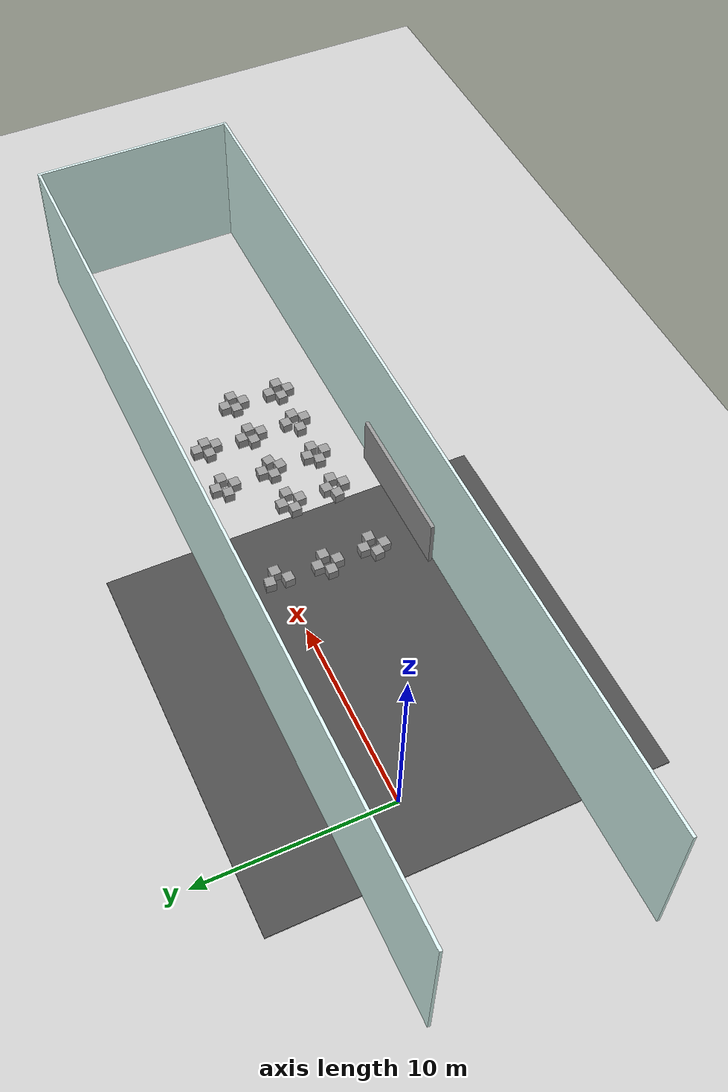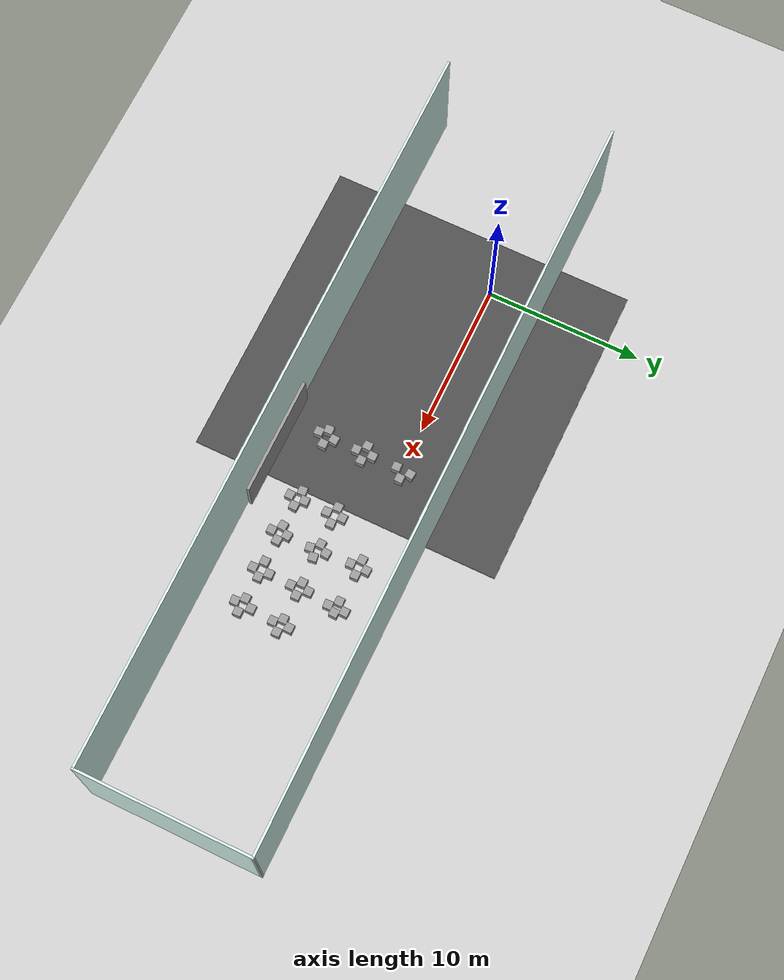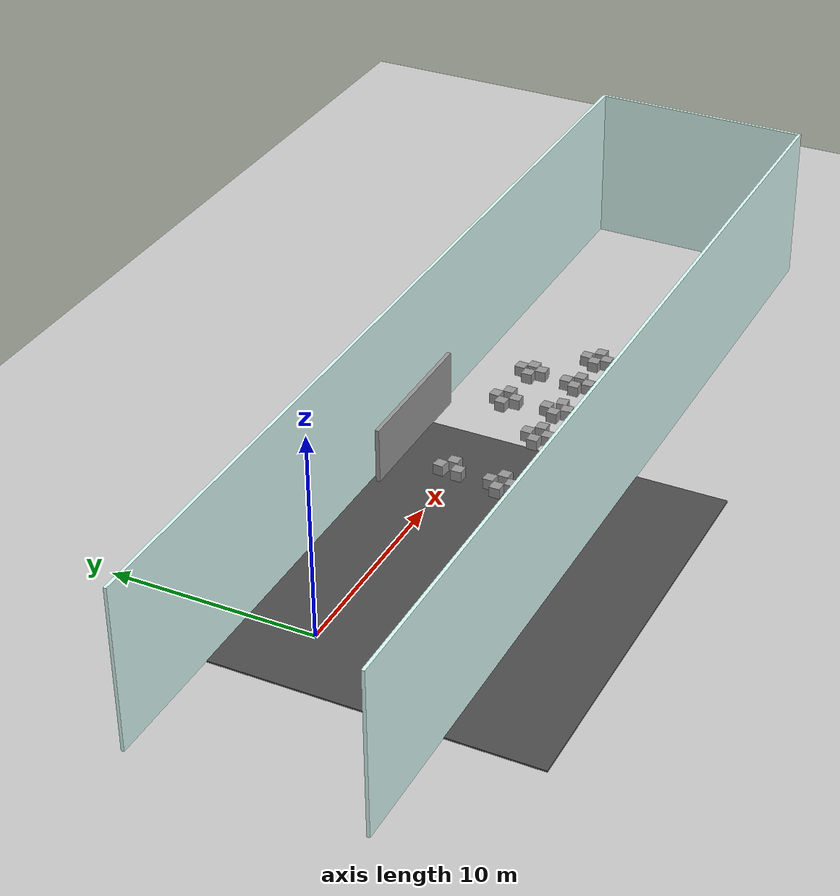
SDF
<sdf version="1.6">
 <world name="default">
  <model name="ground_plane">
   <static>1</static>
   <link name="link">
    <collision name="collision">
     <geometry><plane><normal>0 0 1</normal><size>100 100</size></plane></geometry>
     <surface>
      <contact><collide_bitmask>65535</collide_bitmask></contact>
      <friction><ode><mu>100</mu><mu2>50</mu2></ode></friction>
     </surface>
    </collision>
    <visual name="visual">
     <cast_shadows>0</cast_shadows>
     <geometry><plane><normal>0 0 1</normal><size>100 100</size></plane></geometry>
     <material>
      <script><uri>file://media/materials/scripts/gazebo.material</uri><name>Gazebo/Grey</name></script>
     </material>
    </visual>
   </link>
  </model>
  <model name="grey_wall">
   <static>1</static>
   <link name="link">
    <pose>0 0 1.4 0 -0 0</pose>
    <collision name="collision"><geometry><box><size>7.5 0.2 2.8</size></box></geometry></collision>
    <visual name="visual">
     <cast_shadows>0</cast_shadows>
     <geometry><box><size>7.5 0.2 2.8</size></box></geometry>
     <material>
      <script>
       <uri>model://grey_wall/materials/scripts</uri>
       <uri>model://grey_wall/materials/textures</uri>
       <name>vrc/grey_wall</name>
      </script>
     </material>
    </visual>
   </link>
   <pose>14.888 2.91481 0 0 -0 0.005635</pose>
  </model>
  <model name="grey_wall_clone">
   <static>1</static>
   <link name="link">
    <pose>0 0 1.4 0 -0 0</pose>
    <collision name="collision"><geometry><box><size>7.5 0.2 2.8</size></box></geometry></collision>
    <visual name="visual">
     <cast_shadows>0</cast_shadows>
     <geometry><box><size>7.5 0.2 2.8</size></box></geometry>
     <material>
      <script>
       <uri>model://grey_wall/materials/scripts</uri>
       <uri>model://grey_wall/materials/textures</uri>
       <name>vrc/grey_wall</name>
      </script>
     </material>
    </visual>
   </link>
   <pose>14.9849 -7.30049 0 0 -0 0</pose>
  </model>
  <model name="unit_box_0_clone_10">
   <pose>17.839 -4.81531 0.314112 0 0 -0.045277</pose>
   <link name="link">
    <inertial>
     <mass>1</mass>
     <inertia>
      <ixx>0.166667</ixx>
      <ixy>0</ixy>
      <ixz>0</ixz>
      <iyy>0.166667</iyy>
      <iyz>0</iyz>
      <izz>0.166667</izz>
     </inertia>
    </inertial>
    <collision name="collision">
     <geometry><box><size>0.530101 0.530101 0.530101</size></box></geometry>
    </collision>
    <visual name="visual">
     <geometry><box><size>0.530101 0.530101 0.530101</size></box></geometry>
     <material>
      <script><name>Gazebo/Grey</name><uri>file://media/materials/scripts/gazebo.material</uri></script>
     </material>
    </visual>
   </link>
  </model>
  <model name="unit_box_0_clone_11">
   <pose>16.7922 -4.75542 0.314113 0 -0 0.068771</pose>
   <link name="link">
    <inertial>
     <mass>1</mass>
     <inertia>
      <ixx>0.166667</ixx>
      <ixy>0</ixy>
      <ixz>0</ixz>
      <iyy>0.166667</iyy>
      <iyz>0</iyz>
      <izz>0.166667</izz>
     </inertia>
    </inertial>
    <collision name="collision">
     <geometry><box><size>0.530101 0.530101 0.530101</size></box></geometry>
    </collision>
    <visual name="visual">
     <geometry><box><size>0.530101 0.530101 0.530101</size></box></geometry>
     <material>
      <script><name>Gazebo/Grey</name><uri>file://media/materials/scripts/gazebo.material</uri></script>
     </material>
    </visual>
   </link>
  </model>
  <model name="unit_box_0_clone_12">
   <pose>17.3054 -4.3621 0.314113 0 -0 0.040971</pose>
   <link name="link">
    <inertial>
     <mass>1</mass>
     <inertia>
      <ixx>0.166667</ixx>
      <ixy>0</ixy>
      <ixz>0</ixz>
      <iyy>0.166667</iyy>
      <iyz>0</iyz>
      <izz>0.166667</izz>
     </inertia>
    </inertial>
    <collision name="collision">
     <geometry><box><size>0.530101 0.530101 0.530101</size></box></geometry>
    </collision>
    <visual name="visual">
     <geometry><box><size>0.530101 0.530101 0.530101</size></box></geometry>
     <material>
      <script><name>Gazebo/Grey</name><uri>file://media/materials/scripts/gazebo.material</uri></script>
     </material>
    </visual>
   </link>
  </model>
  <model name="unit_box_0_clone_13">
   <pose>17.3287 -5.3294 0.314112 0 0 -0.026621</pose>
   <link name="link">
    <inertial>
     <mass>1</mass>
     <inertia>
      <ixx>0.166667</ixx>
      <ixy>0</ixy>
      <ixz>0</ixz>
      <iyy>0.166667</iyy>
      <iyz>0</iyz>
      <izz>0.166667</izz>
     </inertia>
    </inertial>
    <collision name="collision">
     <geometry><box><size>0.530101 0.530101 0.530101</size></box></geometry>
    </collision>
    <visual name="visual">
     <geometry><box><size>0.530101 0.530101 0.530101</size></box></geometry>
     <material>
      <script><name>Gazebo/Grey</name><uri>file://media/materials/scripts/gazebo.material</uri></script>
     </material>
    </visual>
   </link>
  </model>
  <model name="unit_box_0_clone_18">
   <pose>19.1218 0.363809 0.314113 0 0 -0.050974</pose>
   <link name="link">
    <inertial>
     <mass>1</mass>
     <inertia>
      <ixx>0.166667</ixx>
      <ixy>0</ixy>
      <ixz>0</ixz>
      <iyy>0.166667</iyy>
      <iyz>0</iyz>
      <izz>0.166667</izz>
     </inertia>
    </inertial>
    <collision name="collision">
     <geometry><box><size>0.530101 0.530101 0.530101</size></box></geometry>
    </collision>
    <visual name="visual">
     <geometry><box><size>0.530101 0.530101 0.530101</size></box></geometry>
     <material>
      <script><name>Gazebo/Grey</name><uri>file://media/materials/scripts/gazebo.material</uri></script>
     </material>
    </visual>
   </link>
  </model>
  <model name="unit_box_0_clone_19">
   <pose>19.61 0.868808 0.314113 0 0 -0.055582</pose>
   <link name="link">
    <inertial>
     <mass>1</mass>
     <inertia>
      <ixx>0.166667</ixx>
      <ixy>0</ixy>
      <ixz>0</ixz>
      <iyy>0.166667</iyy>
      <iyz>0</iyz>
      <izz>0.166667</izz>
     </inertia>
    </inertial>
    <collision name="collision">
     <geometry><box><size>0.530101 0.530101 0.530101</size></box></geometry>
    </collision>
    <visual name="visual">
     <geometry><box><size>0.530101 0.530101 0.530101</size></box></geometry>
     <material>
      <script><name>Gazebo/Grey</name><uri>file://media/materials/scripts/gazebo.material</uri></script>
     </material>
    </visual>
   </link>
  </model>
  <model name="unit_box_0_clone_20">
   <pose>20.1335 0.39458 0.31411 9e-06 -0 -0.00175</pose>
   <link name="link">
    <inertial>
     <mass>1</mass>
     <inertia>
      <ixx>0.166667</ixx>
      <ixy>0</ixy>
      <ixz>0</ixz>
      <iyy>0.166667</iyy>
      <iyz>0</iyz>
      <izz>0.166667</izz>
     </inertia>
    </inertial>
    <collision name="collision">
     <geometry><box><size>0.530101 0.530101 0.530101</size></box></geometry>
    </collision>
    <visual name="visual">
     <geometry><box><size>0.530101 0.530101 0.530101</size></box></geometry>
     <material>
      <script><name>Gazebo/Grey</name><uri>file://media/materials/scripts/gazebo.material</uri></script>
     </material>
    </visual>
   </link>
  </model>
  <model name="unit_box_0_clone_22">
   <pose>19.6936 -1.76088 0.314112 0 0 -0.043757</pose>
   <link name="link">
    <inertial>
     <mass>1</mass>
     <inertia>
      <ixx>0.166667</ixx>
      <ixy>0</ixy>
      <ixz>0</ixz>
      <iyy>0.166667</iyy>
      <iyz>0</iyz>
      <izz>0.166667</izz>
     </inertia>
    </inertial>
    <collision name="collision">
     <geometry><box><size>0.530101 0.530101 0.530101</size></box></geometry>
    </collision>
    <visual name="visual">
     <geometry><box><size>0.530101 0.530101 0.530101</size></box></geometry>
     <material>
      <script><name>Gazebo/Grey</name><uri>file://media/materials/scripts/gazebo.material</uri></script>
     </material>
    </visual>
   </link>
  </model>
  <model name="unit_box_0_clone_24">
   <pose>20.2313 -2.35129 0.314114 5e-06 -0 0.142034</pose>
   <link name="link">
    <inertial>
     <mass>1</mass>
     <inertia>
      <ixx>0.166667</ixx>
      <ixy>0</ixy>
      <ixz>0</ixz>
      <iyy>0.166667</iyy>
      <iyz>0</iyz>
      <izz>0.166667</izz>
     </inertia>
    </inertial>
    <collision name="collision">
     <geometry><box><size>0.530101 0.530101 0.530101</size></box></geometry>
    </collision>
    <visual name="visual">
     <geometry><box><size>0.530101 0.530101 0.530101</size></box></geometry>
     <material>
      <script><name>Gazebo/Grey</name><uri>file://media/materials/scripts/gazebo.material</uri></script>
     </material>
    </visual>
   </link>
  </model>
  <model name="unit_box_0_clone_26">
   <pose>19.6965 -4.34868 0.314111 -1.1e-05 -6e-06 -0.080154</pose>
   <link name="link">
    <inertial>
     <mass>1</mass>
     <inertia>
      <ixx>0.166667</ixx>
      <ixy>0</ixy>
      <ixz>0</ixz>
      <iyy>0.166667</iyy>
      <iyz>0</iyz>
      <izz>0.166667</izz>
     </inertia>
    </inertial>
    <collision name="collision">
     <geometry><box><size>0.530101 0.530101 0.530101</size></box></geometry>
    </collision>
    <visual name="visual">
     <geometry><box><size>0.530101 0.530101 0.530101</size></box></geometry>
     <material>
      <script><name>Gazebo/Grey</name><uri>file://media/materials/scripts/gazebo.material</uri></script>
     </material>
    </visual>
   </link>
  </model>
  <model name="unit_box_0_clone_27">
   <pose>19.2516 -4.84568 0.314113 0 0 -0.086108</pose>
   <link name="link">
    <inertial>
     <mass>1</mass>
     <inertia>
      <ixx>0.166667</ixx>
      <ixy>0</ixy>
      <ixz>0</ixz>
      <iyy>0.166667</iyy>
      <iyz>0</iyz>
      <izz>0.166667</izz>
     </inertia>
    </inertial>
    <collision name="collision">
     <geometry><box><size>0.530101 0.530101 0.530101</size></box></geometry>
    </collision>
    <visual name="visual">
     <geometry><box><size>0.530101 0.530101 0.530101</size></box></geometry>
     <material>
      <script><name>Gazebo/Grey</name><uri>file://media/materials/scripts/gazebo.material</uri></script>
     </material>
    </visual>
   </link>
  </model>
  <model name="unit_box_0_clone_28">
   <pose>20.2089 -4.77115 0.314108 7e-06 1.1e-05 -0.035496</pose>
   <link name="link">
    <inertial>
     <mass>1</mass>
     <inertia>
      <ixx>0.166667</ixx>
      <ixy>0</ixy>
      <ixz>0</ixz>
      <iyy>0.166667</iyy>
      <iyz>0</iyz>
      <izz>0.166667</izz>
     </inertia>
    </inertial>
    <collision name="collision">
     <geometry><box><size>0.530101 0.530101 0.530101</size></box></geometry>
    </collision>
    <visual name="visual">
     <geometry><box><size>0.530101 0.530101 0.530101</size></box></geometry>
     <material>
      <script><name>Gazebo/Grey</name><uri>file://media/materials/scripts/gazebo.material</uri></script>
     </material>
    </visual>
   </link>
  </model>
  <model name="unit_box_0_clone_29">
   <pose>19.7625 -5.34364 0.314108 1e-05 7e-06 -0.008113</pose>
   <link name="link">
    <inertial>
     <mass>1</mass>
     <inertia>
      <ixx>0.166667</ixx>
      <ixy>0</ixy>
      <ixz>0</ixz>
      <iyy>0.166667</iyy>
      <iyz>0</iyz>
      <izz>0.166667</izz>
     </inertia>
    </inertial>
    <collision name="collision">
     <geometry><box><size>0.530101 0.530101 0.530101</size></box></geometry>
    </collision>
    <visual name="visual">
     <geometry><box><size>0.530101 0.530101 0.530101</size></box></geometry>
     <material>
      <script><name>Gazebo/Grey</name><uri>file://media/materials/scripts/gazebo.material</uri></script>
     </material>
    </visual>
   </link>
  </model>
  <model name="unit_box_0_clone_30">
   <pose>21.6915 -4.81691 0.31411 -9e-06 0 0</pose>
   <link name="link">
    <inertial>
     <mass>1</mass>
     <inertia>
      <ixx>0.166667</ixx>
      <ixy>0</ixy>
      <ixz>0</ixz>
      <iyy>0.166667</iyy>
      <iyz>0</iyz>
      <izz>0.166667</izz>
     </inertia>
    </inertial>
    <collision name="collision">
     <geometry><box><size>0.530101 0.530101 0.530101</size></box></geometry>
    </collision>
    <visual name="visual">
     <geometry><box><size>0.530101 0.530101 0.530101</size></box></geometry>
     <material>
      <script><name>Gazebo/Grey</name><uri>file://media/materials/scripts/gazebo.material</uri></script>
     </material>
    </visual>
   </link>
  </model>
  <model name="unit_box_0_clone_33">
   <pose>22.2748 -4.24633 0.314113 0 -0 0.060885</pose>
   <link name="link">
    <inertial>
     <mass>1</mass>
     <inertia>
      <ixx>0.166667</ixx>
      <ixy>0</ixy>
      <ixz>0</ixz>
      <iyy>0.166667</iyy>
      <iyz>0</iyz>
      <izz>0.166667</izz>
     </inertia>
    </inertial>
    <collision name="collision">
     <geometry><box><size>0.530101 0.530101 0.530101</size></box></geometry>
    </collision>
    <visual name="visual">
     <geometry><box><size>0.530101 0.530101 0.530101</size></box></geometry>
     <material>
      <script><name>Gazebo/Grey</name><uri>file://media/materials/scripts/gazebo.material</uri></script>
     </material>
    </visual>
   </link>
  </model>
  <model name="unit_box_0_clone_34">
   <pose>22.2394 -1.66118 0.31411 -9e-06 -0 1e-06</pose>
   <link name="link">
    <inertial>
     <mass>1</mass>
     <inertia>
      <ixx>0.166667</ixx>
      <ixy>0</ixy>
      <ixz>0</ixz>
      <iyy>0.166667</iyy>
      <iyz>0</iyz>
      <izz>0.166667</izz>
     </inertia>
    </inertial>
    <collision name="collision">
     <geometry><box><size>0.530101 0.530101 0.530101</size></box></geometry>
    </collision>
    <visual name="visual">
     <geometry><box><size>0.530101 0.530101 0.530101</size></box></geometry>
     <material>
      <script><name>Gazebo/Grey</name><uri>file://media/materials/scripts/gazebo.material</uri></script>
     </material>
    </visual>
   </link>
  </model>
  <model name="unit_box_0_clone_36">
   <pose>22.7152 -4.7553 0.314113 0 2e-06 0.049261</pose>
   <link name="link">
    <inertial>
     <mass>1</mass>
     <inertia>
      <ixx>0.166667</ixx>
      <ixy>0</ixy>
      <ixz>0</ixz>
      <iyy>0.166667</iyy>
      <iyz>0</iyz>
      <izz>0.166667</izz>
     </inertia>
    </inertial>
    <collision name="collision">
     <geometry><box><size>0.530101 0.530101 0.530101</size></box></geometry>
    </collision>
    <visual name="visual">
     <geometry><box><size>0.530101 0.530101 0.530101</size></box></geometry>
     <material>
      <script><name>Gazebo/Grey</name><uri>file://media/materials/scripts/gazebo.material</uri></script>
     </material>
    </visual>
   </link>
  </model>
  <model name="unit_box_0_clone_37">
   <pose>22.3075 -5.29948 0.31411 9e-06 -0 -0.002179</pose>
   <link name="link">
    <inertial>
     <mass>1</mass>
     <inertia>
      <ixx>0.166667</ixx>
      <ixy>0</ixy>
      <ixz>0</ixz>
      <iyy>0.166667</iyy>
      <iyz>0</iyz>
      <izz>0.166667</izz>
     </inertia>
    </inertial>
    <collision name="collision">
     <geometry><box><size>0.530101 0.530101 0.530101</size></box></geometry>
    </collision>
    <visual name="visual">
     <geometry><box><size>0.530101 0.530101 0.530101</size></box></geometry>
     <material>
      <script><name>Gazebo/Grey</name><uri>file://media/materials/scripts/gazebo.material</uri></script>
     </material>
    </visual>
   </link>
  </model>
  <model name="unit_box_0_clone_40">
   <pose>24.5965 -5.33599 0.314111 -1.1e-05 -5e-06 0.031895</pose>
   <link name="link">
    <inertial>
     <mass>1</mass>
     <inertia>
      <ixx>0.166667</ixx>
      <ixy>0</ixy>
      <ixz>0</ixz>
      <iyy>0.166667</iyy>
      <iyz>0</iyz>
      <izz>0.166667</izz>
     </inertia>
    </inertial>
    <collision name="collision">
     <geometry><box><size>0.530101 0.530101 0.530101</size></box></geometry>
    </collision>
    <visual name="visual">
     <geometry><box><size>0.530101 0.530101 0.530101</size></box></geometry>
     <material>
      <script><name>Gazebo/Grey</name><uri>file://media/materials/scripts/gazebo.material</uri></script>
     </material>
    </visual>
   </link>
  </model>
  <model name="unit_box_0_clone_45">
   <pose>24.7181 -1.70398 0.31411 0 -9e-06 -0.022695</pose>
   <link name="link">
    <inertial>
     <mass>1</mass>
     <inertia>
      <ixx>0.166667</ixx>
      <ixy>0</ixy>
      <ixz>0</ixz>
      <iyy>0.166667</iyy>
      <iyz>0</iyz>
      <izz>0.166667</izz>
     </inertia>
    </inertial>
    <collision name="collision">
     <geometry><box><size>0.530101 0.530101 0.530101</size></box></geometry>
    </collision>
    <visual name="visual">
     <geometry><box><size>0.530101 0.530101 0.530101</size></box></geometry>
     <material>
      <script><name>Gazebo/Grey</name><uri>file://media/materials/scripts/gazebo.material</uri></script>
     </material>
    </visual>
   </link>
  </model>
  <model name="unit_box_0_clone_47">
   <pose>22.7519 0.280747 0.314112 0 0 -0.009481</pose>
   <link name="link">
    <inertial>
     <mass>1</mass>
     <inertia>
      <ixx>0.166667</ixx>
      <ixy>0</ixy>
      <ixz>0</ixz>
      <iyy>0.166667</iyy>
      <iyz>0</iyz>
      <izz>0.166667</izz>
     </inertia>
    </inertial>
    <collision name="collision">
     <geometry><box><size>0.530101 0.530101 0.530101</size></box></geometry>
    </collision>
    <visual name="visual">
     <geometry><box><size>0.530101 0.530101 0.530101</size></box></geometry>
     <material>
      <script><name>Gazebo/Grey</name><uri>file://media/materials/scripts/gazebo.material</uri></script>
     </material>
    </visual>
   </link>
  </model>
  <model name="unit_box_0_clone_48">
   <pose>22.4415 0.817262 0.31411 9e-06 -1e-06 -0.022176</pose>
   <link name="link">
    <inertial>
     <mass>1</mass>
     <inertia>
      <ixx>0.166667</ixx>
      <ixy>0</ixy>
      <ixz>0</ixz>
      <iyy>0.166667</iyy>
      <iyz>0</iyz>
      <izz>0.166667</izz>
     </inertia>
    </inertial>
    <collision name="collision">
     <geometry><box><size>0.530101 0.530101 0.530101</size></box></geometry>
    </collision>
    <visual name="visual">
     <geometry><box><size>0.530101 0.530101 0.530101</size></box></geometry>
     <material>
      <script><name>Gazebo/Grey</name><uri>file://media/materials/scripts/gazebo.material</uri></script>
     </material>
    </visual>
   </link>
  </model>
  <model name="unit_box_0_clone_22_clone">
   <pose>19.2929 -2.28116 0.31411 9e-06 -1e-06 -0.018127</pose>
   <link name="link">
    <inertial>
     <mass>1</mass>
     <inertia>
      <ixx>0.166667</ixx>
      <ixy>0</ixy>
      <ixz>0</ixz>
      <iyy>0.166667</iyy>
      <iyz>0</iyz>
      <izz>0.166667</izz>
     </inertia>
    </inertial>
    <collision name="collision">
     <geometry><box><size>0.530101 0.530101 0.530101</size></box></geometry>
    </collision>
    <visual name="visual">
     <geometry><box><size>0.530101 0.530101 0.530101</size></box></geometry>
     <material>
      <script><name>Gazebo/Grey</name><uri>file://media/materials/scripts/gazebo.material</uri></script>
     </material>
    </visual>
   </link>
  </model>
  <model name="unit_box_0_clone_22_clone_0">
   <pose>19.7566 -2.79248 0.314113 0 -0 0.142036</pose>
   <link name="link">
    <inertial>
     <mass>1</mass>
     <inertia>
      <ixx>0.166667</ixx>
      <ixy>0</ixy>
      <ixz>0</ixz>
      <iyy>0.166667</iyy>
      <iyz>0</iyz>
      <izz>0.166667</izz>
     </inertia>
    </inertial>
    <collision name="collision">
     <geometry><box><size>0.530101 0.530101 0.530101</size></box></geometry>
    </collision>
    <visual name="visual">
     <geometry><box><size>0.530101 0.530101 0.530101</size></box></geometry>
     <material>
      <script><name>Gazebo/Grey</name><uri>file://media/materials/scripts/gazebo.material</uri></script>
     </material>
    </visual>
   </link>
  </model>
  <model name="unit_box_0_clone_22_clone_1">
   <pose>21.9071 -2.22875 0.314111 -7e-06 2e-06 0.018984</pose>
   <link name="link">
    <inertial>
     <mass>1</mass>
     <inertia>
      <ixx>0.166667</ixx>
      <ixy>0</ixy>
      <ixz>0</ixz>
      <iyy>0.166667</iyy>
      <iyz>0</iyz>
      <izz>0.166667</izz>
     </inertia>
    </inertial>
    <collision name="collision">
     <geometry><box><size>0.530101 0.530101 0.530101</size></box></geometry>
    </collision>
    <visual name="visual">
     <geometry><box><size>0.530101 0.530101 0.530101</size></box></geometry>
     <material>
      <script><name>Gazebo/Grey</name><uri>file://media/materials/scripts/gazebo.material</uri></script>
     </material>
    </visual>
   </link>
  </model>
  <model name="unit_box_0_clone_22_clone_2">
   <pose>22.314 -2.79447 0.314108 7e-06 1.1e-05 0.018981</pose>
   <link name="link">
    <inertial>
     <mass>1</mass>
     <inertia>
      <ixx>0.166667</ixx>
      <ixy>0</ixy>
      <ixz>0</ixz>
      <iyy>0.166667</iyy>
      <iyz>0</iyz>
      <izz>0.166667</izz>
     </inertia>
    </inertial>
    <collision name="collision">
     <geometry><box><size>0.530101 0.530101 0.530101</size></box></geometry>
    </collision>
    <visual name="visual">
     <geometry><box><size>0.530101 0.530101 0.530101</size></box></geometry>
     <material>
      <script><name>Gazebo/Grey</name><uri>file://media/materials/scripts/gazebo.material</uri></script>
     </material>
    </visual>
   </link>
  </model>
  <model name="unit_box_0_clone_22_clone_3">
   <pose>22.7608 -2.22634 0.314108 7e-06 1.1e-05 0.018981</pose>
   <link name="link">
    <inertial>
     <mass>1</mass>
     <inertia>
      <ixx>0.166667</ixx>
      <ixy>0</ixy>
      <ixz>0</ixz>
      <iyy>0.166667</iyy>
      <iyz>0</iyz>
      <izz>0.166667</izz>
     </inertia>
    </inertial>
    <collision name="collision">
     <geometry><box><size>0.530101 0.530101 0.530101</size></box></geometry>
    </collision>
    <visual name="visual">
     <geometry><box><size>0.530101 0.530101 0.530101</size></box></geometry>
     <material>
      <script><name>Gazebo/Grey</name><uri>file://media/materials/scripts/gazebo.material</uri></script>
     </material>
    </visual>
   </link>
  </model>
  <model name="unit_box_0_clone_22_clone_4">
   <pose>24.3724 -2.23827 0.314113 0 -0 0.019117</pose>
   <link name="link">
    <inertial>
     <mass>1</mass>
     <inertia>
      <ixx>0.166667</ixx>
      <ixy>0</ixy>
      <ixz>0</ixz>
      <iyy>0.166667</iyy>
      <iyz>0</iyz>
      <izz>0.166667</izz>
     </inertia>
    </inertial>
    <collision name="collision">
     <geometry><box><size>0.530101 0.530101 0.530101</size></box></geometry>
    </collision>
    <visual name="visual">
     <geometry><box><size>0.530101 0.530101 0.530101</size></box></geometry>
     <material>
      <script><name>Gazebo/Grey</name><uri>file://media/materials/scripts/gazebo.material</uri></script>
     </material>
    </visual>
   </link>
  </model>
  <model name="unit_box_0_clone_22_clone_5">
   <pose>24.7363 -2.7604 0.314113 0 -0 0.03195</pose>
   <link name="link">
    <inertial>
     <mass>1</mass>
     <inertia>
      <ixx>0.166667</ixx>
      <ixy>0</ixy>
      <ixz>0</ixz>
      <iyy>0.166667</iyy>
      <iyz>0</iyz>
      <izz>0.166667</izz>
     </inertia>
    </inertial>
    <collision name="collision">
     <geometry><box><size>0.530101 0.530101 0.530101</size></box></geometry>
    </collision>
    <visual name="visual">
     <geometry><box><size>0.530101 0.530101 0.530101</size></box></geometry>
     <material>
      <script><name>Gazebo/Grey</name><uri>file://media/materials/scripts/gazebo.material</uri></script>
     </material>
    </visual>
   </link>
  </model>
  <model name="unit_box_0_clone_22_clone_6">
   <pose>17.3327 -2.86016 0.314111 -7e-06 2e-06 0.017739</pose>
   <link name="link">
    <inertial>
     <mass>1</mass>
     <inertia>
      <ixx>0.166667</ixx>
      <ixy>0</ixy>
      <ixz>0</ixz>
      <iyy>0.166667</iyy>
      <iyz>0</iyz>
      <izz>0.166667</izz>
     </inertia>
    </inertial>
    <collision name="collision">
     <geometry><box><size>0.530101 0.530101 0.530101</size></box></geometry>
    </collision>
    <visual name="visual">
     <geometry><box><size>0.530101 0.530101 0.530101</size></box></geometry>
     <material>
      <script><name>Gazebo/Grey</name><uri>file://media/materials/scripts/gazebo.material</uri></script>
     </material>
    </visual>
   </link>
  </model>
  <model name="unit_box_0_clone_22_clone_7">
   <pose>16.7976 -2.37051 0.314113 1e-06 -0 0.001214</pose>
   <link name="link">
    <inertial>
     <mass>1</mass>
     <inertia>
      <ixx>0.166667</ixx>
      <ixy>0</ixy>
      <ixz>0</ixz>
      <iyy>0.166667</iyy>
      <iyz>0</iyz>
      <izz>0.166667</izz>
     </inertia>
    </inertial>
    <collision name="collision">
     <geometry><box><size>0.530101 0.530101 0.530101</size></box></geometry>
    </collision>
    <visual name="visual">
     <geometry><box><size>0.530101 0.530101 0.530101</size></box></geometry>
     <material>
      <script><name>Gazebo/Grey</name><uri>file://media/materials/scripts/gazebo.material</uri></script>
     </material>
    </visual>
   </link>
  </model>
  <model name="unit_box_0_clone_22_clone_8">
   <pose>17.2949 -1.84031 0.31411 -9e-06 -0 -0.001706</pose>
   <link name="link">
    <inertial>
     <mass>1</mass>
     <inertia>
      <ixx>0.166667</ixx>
      <ixy>0</ixy>
      <ixz>0</ixz>
      <iyy>0.166667</iyy>
      <iyz>0</iyz>
      <izz>0.166667</izz>
     </inertia>
    </inertial>
    <collision name="collision">
     <geometry><box><size>0.530101 0.530101 0.530101</size></box></geometry>
    </collision>
    <visual name="visual">
     <geometry><box><size>0.530101 0.530101 0.530101</size></box></geometry>
     <material>
      <script><name>Gazebo/Grey</name><uri>file://media/materials/scripts/gazebo.material</uri></script>
     </material>
    </visual>
   </link>
  </model>
  <model name="unit_box_0_clone_22_clone_9">
   <pose>17.8893 -2.32768 0.314111 -7e-06 2e-06 0.018982</pose>
   <link name="link">
    <inertial>
     <mass>1</mass>
     <inertia>
      <ixx>0.166667</ixx>
      <ixy>0</ixy>
      <ixz>0</ixz>
      <iyy>0.166667</iyy>
      <iyz>0</iyz>
      <izz>0.166667</izz>
     </inertia>
    </inertial>
    <collision name="collision">
     <geometry><box><size>0.530101 0.530101 0.530101</size></box></geometry>
    </collision>
    <visual name="visual">
     <geometry><box><size>0.530101 0.530101 0.530101</size></box></geometry>
     <material>
      <script><name>Gazebo/Grey</name><uri>file://media/materials/scripts/gazebo.material</uri></script>
     </material>
    </visual>
   </link>
  </model>
  <model name="unit_box_0_clone_22_clone_10">
   <pose>19.6115 -0.169343 0.314112 0 -0 0.043611</pose>
   <link name="link">
    <inertial>
     <mass>1</mass>
     <inertia>
      <ixx>0.166667</ixx>
      <ixy>0</ixy>
      <ixz>0</ixz>
      <iyy>0.166667</iyy>
      <iyz>0</iyz>
      <izz>0.166667</izz>
     </inertia>
    </inertial>
    <collision name="collision">
     <geometry><box><size>0.530101 0.530101 0.530101</size></box></geometry>
    </collision>
    <visual name="visual">
     <geometry><box><size>0.530101 0.530101 0.530101</size></box></geometry>
     <material>
      <script><name>Gazebo/Grey</name><uri>file://media/materials/scripts/gazebo.material</uri></script>
     </material>
    </visual>
   </link>
  </model>
  <model name="unit_box_0_clone_22_clone_11">
   <pose>22.4624 -0.258277 0.314113 0 -0 0.035432</pose>
   <link name="link">
    <inertial>
     <mass>1</mass>
     <inertia>
      <ixx>0.166667</ixx>
      <ixy>0</ixy>
      <ixz>0</ixz>
      <iyy>0.166667</iyy>
      <iyz>0</iyz>
      <izz>0.166667</izz>
     </inertia>
    </inertial>
    <collision name="collision">
     <geometry><box><size>0.530101 0.530101 0.530101</size></box></geometry>
    </collision>
    <visual name="visual">
     <geometry><box><size>0.530101 0.530101 0.530101</size></box></geometry>
     <material>
      <script><name>Gazebo/Grey</name><uri>file://media/materials/scripts/gazebo.material</uri></script>
     </material>
    </visual>
   </link>
  </model>
  <model name="unit_box_0_clone_22_clone_12">
   <pose>21.9954 0.261942 0.314115 0 8e-06 0.024006</pose>
   <link name="link">
    <inertial>
     <mass>1</mass>
     <inertia>
      <ixx>0.166667</ixx>
      <ixy>0</ixy>
      <ixz>0</ixz>
      <iyy>0.166667</iyy>
      <iyz>0</iyz>
      <izz>0.166667</izz>
     </inertia>
    </inertial>
    <collision name="collision">
     <geometry><box><size>0.530101 0.530101 0.530101</size></box></geometry>
    </collision>
    <visual name="visual">
     <geometry><box><size>0.530101 0.530101 0.530101</size></box></geometry>
     <material>
      <script><name>Gazebo/Grey</name><uri>file://media/materials/scripts/gazebo.material</uri></script>
     </material>
    </visual>
   </link>
  </model>
  <model name="unit_box_0_clone_22_clone_13">
   <pose>25.2504 -2.25517 0.314113 0 -0 0.032964</pose>
   <link name="link">
    <inertial>
     <mass>1</mass>
     <inertia>
      <ixx>0.166667</ixx>
      <ixy>0</ixy>
      <ixz>0</ixz>
      <iyy>0.166667</iyy>
      <iyz>0</iyz>
      <izz>0.166667</izz>
     </inertia>
    </inertial>
    <collision name="collision">
     <geometry><box><size>0.530101 0.530101 0.530101</size></box></geometry>
    </collision>
    <visual name="visual">
     <geometry><box><size>0.530101 0.530101 0.530101</size></box></geometry>
     <material>
      <script><name>Gazebo/Grey</name><uri>file://media/materials/scripts/gazebo.material</uri></script>
     </material>
    </visual>
   </link>
  </model>
  <model name="unit_box_0_clone_22_clone_15">
   <pose>13.0418 0.628696 0.301384 -0.025377 -0.003213 -0.125927</pose>
   <link name="link">
    <inertial>
     <mass>1</mass>
     <inertia>
      <ixx>0.166667</ixx>
      <ixy>0</ixy>
      <ixz>0</ixz>
      <iyy>0.166667</iyy>
      <iyz>0</iyz>
      <izz>0.166667</izz>
     </inertia>
    </inertial>
    <collision name="collision">
     <geometry><box><size>0.530101 0.530101 0.530101</size></box></geometry>
    </collision>
    <visual name="visual">
     <geometry><box><size>0.530101 0.530101 0.530101</size></box></geometry>
     <material>
      <script><name>Gazebo/Grey</name><uri>file://media/materials/scripts/gazebo.material</uri></script>
     </material>
    </visual>
   </link>
  </model>
  <model name="unit_box_0_clone_22_clone_16">
   <pose>13.5561 0.167406 0.314113 -5e-06 3e-06 0.004826</pose>
   <link name="link">
    <inertial>
     <mass>1</mass>
     <inertia>
      <ixx>0.166667</ixx>
      <ixy>0</ixy>
      <ixz>0</ixz>
      <iyy>0.166667</iyy>
      <iyz>0</iyz>
      <izz>0.166667</izz>
     </inertia>
    </inertial>
    <collision name="collision">
     <geometry><box><size>0.530101 0.530101 0.530101</size></box></geometry>
    </collision>
    <visual name="visual">
     <geometry><box><size>0.530101 0.530101 0.530101</size></box></geometry>
     <material>
      <script><name>Gazebo/Grey</name><uri>file://media/materials/scripts/gazebo.material</uri></script>
     </material>
    </visual>
   </link>
  </model>
  <model name="unit_box_0_clone_22_clone_17">
   <pose>12.9531 -0.30757 0.299983 0.02234 -0.000887 0.039672</pose>
   <link name="link">
    <inertial>
     <mass>1</mass>
     <inertia>
      <ixx>0.166667</ixx>
      <ixy>0</ixy>
      <ixz>0</ixz>
      <iyy>0.166667</iyy>
      <iyz>0</iyz>
      <izz>0.166667</izz>
     </inertia>
    </inertial>
    <collision name="collision">
     <geometry><box><size>0.530101 0.530101 0.530101</size></box></geometry>
    </collision>
    <visual name="visual">
     <geometry><box><size>0.530101 0.530101 0.530101</size></box></geometry>
     <material>
      <script><name>Gazebo/Grey</name><uri>file://media/materials/scripts/gazebo.material</uri></script>
     </material>
    </visual>
   </link>
  </model>
  <model name="unit_box_0_clone_22_clone_18">
   <pose>12.9862 -1.92955 0.301265 -0.027266 -0.00092 -0.033706</pose>
   <link name="link">
    <inertial>
     <mass>1</mass>
     <inertia>
      <ixx>0.166667</ixx>
      <ixy>0</ixy>
      <ixz>0</ixz>
      <iyy>0.166667</iyy>
      <iyz>0</iyz>
      <izz>0.166667</izz>
     </inertia>
    </inertial>
    <collision name="collision">
     <geometry><box><size>0.530101 0.530101 0.530101</size></box></geometry>
    </collision>
    <visual name="visual">
     <geometry><box><size>0.530101 0.530101 0.530101</size></box></geometry>
     <material>
      <script><name>Gazebo/Grey</name><uri>file://media/materials/scripts/gazebo.material</uri></script>
     </material>
    </visual>
   </link>
  </model>
  <model name="unit_box_0_clone_22_clone_19">
   <pose>12.5168 -2.46295 0.299773 0 -0.022436 0.000499</pose>
   <link name="link">
    <inertial>
     <mass>1</mass>
     <inertia>
      <ixx>0.166667</ixx>
      <ixy>0</ixy>
      <ixz>0</ixz>
      <iyy>0.166667</iyy>
      <iyz>0</iyz>
      <izz>0.166667</izz>
     </inertia>
    </inertial>
    <collision name="collision">
     <geometry><box><size>0.530101 0.530101 0.530101</size></box></geometry>
    </collision>
    <visual name="visual">
     <geometry><box><size>0.530101 0.530101 0.530101</size></box></geometry>
     <material>
      <script><name>Gazebo/Grey</name><uri>file://media/materials/scripts/gazebo.material</uri></script>
     </material>
    </visual>
   </link>
  </model>
  <model name="unit_box_0_clone_22_clone_20">
   <pose>13 -3.00002 0.29389 6e-06 9e-06 0.018996</pose>
   <link name="link">
    <inertial>
     <mass>1</mass>
     <inertia>
      <ixx>0.166667</ixx>
      <ixy>0</ixy>
      <ixz>0</ixz>
      <iyy>0.166667</iyy>
      <iyz>0</iyz>
      <izz>0.166667</izz>
     </inertia>
    </inertial>
    <collision name="collision">
     <geometry><box><size>0.530101 0.530101 0.530101</size></box></geometry>
    </collision>
    <visual name="visual">
     <geometry><box><size>0.530101 0.530101 0.530101</size></box></geometry>
     <material>
      <script><name>Gazebo/Grey</name><uri>file://media/materials/scripts/gazebo.material</uri></script>
     </material>
    </visual>
   </link>
  </model>
  <model name="unit_box_0_clone_22_clone_21">
   <pose>13.5105 -2.43043 0.314113 -2e-06 -0 -0.01003</pose>
   <link name="link">
    <inertial>
     <mass>1</mass>
     <inertia>
      <ixx>0.166667</ixx>
      <ixy>0</ixy>
      <ixz>0</ixz>
      <iyy>0.166667</iyy>
      <iyz>0</iyz>
      <izz>0.166667</izz>
     </inertia>
    </inertial>
    <collision name="collision">
     <geometry><box><size>0.530101 0.530101 0.530101</size></box></geometry>
    </collision>
    <visual name="visual">
     <geometry><box><size>0.530101 0.530101 0.530101</size></box></geometry>
     <material>
      <script><name>Gazebo/Grey</name><uri>file://media/materials/scripts/gazebo.material</uri></script>
     </material>
    </visual>
   </link>
  </model>
  <model name="unit_box_0_clone_22_clone_22">
   <pose>13.0374 -4.48715 0.301605 -0.028361 -0.00114 -0.04017</pose>
   <link name="link">
    <inertial>
     <mass>1</mass>
     <inertia>
      <ixx>0.166667</ixx>
      <ixy>0</ixy>
      <ixz>0</ixz>
      <iyy>0.166667</iyy>
      <iyz>0</iyz>
      <izz>0.166667</izz>
     </inertia>
    </inertial>
    <collision name="collision">
     <geometry><box><size>0.530101 0.530101 0.530101</size></box></geometry>
    </collision>
    <visual name="visual">
     <geometry><box><size>0.530101 0.530101 0.530101</size></box></geometry>
     <material>
      <script><name>Gazebo/Grey</name><uri>file://media/materials/scripts/gazebo.material</uri></script>
     </material>
    </visual>
   </link>
  </model>
  <model name="unit_box_0_clone_22_clone_23">
   <pose>13.5574 -4.98043 0.314112 0 0 -0.016194</pose>
   <link name="link">
    <inertial>
     <mass>1</mass>
     <inertia>
      <ixx>0.166667</ixx>
      <ixy>0</ixy>
      <ixz>0</ixz>
      <iyy>0.166667</iyy>
      <iyz>0</iyz>
      <izz>0.166667</izz>
     </inertia>
    </inertial>
    <collision name="collision">
     <geometry><box><size>0.530101 0.530101 0.530101</size></box></geometry>
    </collision>
    <visual name="visual">
     <geometry><box><size>0.530101 0.530101 0.530101</size></box></geometry>
     <material>
      <script><name>Gazebo/Grey</name><uri>file://media/materials/scripts/gazebo.material</uri></script>
     </material>
    </visual>
   </link>
  </model>
  <model name="unit_box_0_clone_22_clone_24">
   <pose>12.5941 -5.03671 0.300997 -0 -0.027174 0.067693</pose>
   <link name="link">
    <inertial>
     <mass>1</mass>
     <inertia>
      <ixx>0.166667</ixx>
      <ixy>0</ixy>
      <ixz>0</ixz>
      <iyy>0.166667</iyy>
      <iyz>0</iyz>
      <izz>0.166667</izz>
     </inertia>
    </inertial>
    <collision name="collision">
     <geometry><box><size>0.530101 0.530101 0.530101</size></box></geometry>
    </collision>
    <visual name="visual">
     <geometry><box><size>0.530101 0.530101 0.530101</size></box></geometry>
     <material>
      <script><name>Gazebo/Grey</name><uri>file://media/materials/scripts/gazebo.material</uri></script>
     </material>
    </visual>
   </link>
  </model>
  <model name="unit_box_0_clone_22_clone_25">
   <pose>12.9422 -5.55085 0.293895 0 -7e-06 0.049717</pose>
   <link name="link">
    <inertial>
     <mass>1</mass>
     <inertia>
      <ixx>0.166667</ixx>
      <ixy>0</ixy>
      <ixz>0</ixz>
      <iyy>0.166667</iyy>
      <iyz>0</iyz>
      <izz>0.166667</izz>
     </inertia>
    </inertial>
    <collision name="collision">
     <geometry><box><size>0.530101 0.530101 0.530101</size></box></geometry>
    </collision>
    <visual name="visual">
     <geometry><box><size>0.530101 0.530101 0.530101</size></box></geometry>
     <material>
      <script><name>Gazebo/Grey</name><uri>file://media/materials/scripts/gazebo.material</uri></script>
     </material>
    </visual>
   </link>
  </model>
  <model name="world_frame">
   <link name="Wall_210">
    <pose>-0.024075 -5.42699 0 0 -0 0</pose>
    <visual name="Wall_210_Visual">
     <pose>0 0 4 0 -0 0</pose>
     <geometry><box><size>47.75 0.15 8</size></box></geometry>
     <material>
      <script><uri>file://media/materials/scripts/gazebo.material</uri><name>Gazebo/Grey</name></script>
      <ambient>0.866667 1 0.972549 1</ambient>
      <shader type="pixel"/>
      <diffuse>0.7 0.7 0.7 1</diffuse>
      <specular>0.01 0.01 0.01 1</specular>
      <emissive>0 0 0 1</emissive>
     </material>
     <meta><layer>0</layer></meta>
    </visual>
    <collision name="Wall_210_Collision">
     <pose>0 0 4 0 -0 0</pose>
     <geometry><box><size>47.75 0.15 8</size></box></geometry>
     <surface>
      <friction>
       <ode><mu>1</mu><mu2>1</mu2><fdir1>0 0 0</fdir1><slip1>0</slip1><slip2>0</slip2></ode>
       <torsional>
        <coefficient>1</coefficient>
        <patch_radius>0</patch_radius>
        <surface_radius>0</surface_radius>
        <use_patch_radius>1</use_patch_radius>
        <ode><slip>0</slip></ode>
       </torsional>
      </friction>
      <bounce><restitution_coefficient>0</restitution_coefficient><threshold>1e+06</threshold></bounce>
      <contact>
       <collide_without_contact>0</collide_without_contact>
       <collide_without_contact_bitmask>1</collide_without_contact_bitmask>
       <collide_bitmask>1</collide_bitmask>
       <ode>
        <soft_cfm>0</soft_cfm>
        <soft_erp>0.2</soft_erp>
        <kp>1e+13</kp>
        <kd>1</kd>
        <max_vel>0.01</max_vel>
        <min_depth>0</min_depth>
       </ode>
       <bullet>
        <split_impulse>1</split_impulse>
        <split_impulse_penetration_threshold>-0.01</split_impulse_penetration_threshold>
        <soft_cfm>0</soft_cfm>
        <soft_erp>0.2</soft_erp>
        <kp>1e+13</kp>
        <kd>1</kd>
       </bullet>
      </contact>
     </surface>
    </collision>
   </link>
   <link name="Wall_211">
    <pose>23.7999 0 0 0 -0 1.56702</pose>
    <visual name="Wall_211_Visual">
     <pose>0 0 4 0 -0 0</pose>
     <geometry><box><size>11 0.15 8</size></box></geometry>
     <material>
      <script><uri>file://media/materials/scripts/gazebo.material</uri><name>Gazebo/Grey</name></script>
      <ambient>0.866667 1 0.972549 1</ambient>
      <shader type="pixel"/>
      <diffuse>0.7 0.7 0.7 1</diffuse>
      <specular>0.01 0.01 0.01 1</specular>
      <emissive>0 0 0 1</emissive>
     </material>
     <meta><layer>0</layer></meta>
    </visual>
    <collision name="Wall_211_Collision">
     <pose>0 0 4 0 -0 0</pose>
     <geometry><box><size>11 0.15 8</size></box></geometry>
     <surface>
      <friction>
       <ode><mu>1</mu><mu2>1</mu2><fdir1>0 0 0</fdir1><slip1>0</slip1><slip2>0</slip2></ode>
       <torsional>
        <coefficient>1</coefficient>
        <patch_radius>0</patch_radius>
        <surface_radius>0</surface_radius>
        <use_patch_radius>1</use_patch_radius>
        <ode><slip>0</slip></ode>
       </torsional>
      </friction>
      <bounce><restitution_coefficient>0</restitution_coefficient><threshold>1e+06</threshold></bounce>
      <contact>
       <collide_without_contact>0</collide_without_contact>
       <collide_without_contact_bitmask>1</collide_without_contact_bitmask>
       <collide_bitmask>1</collide_bitmask>
       <ode>
        <soft_cfm>0</soft_cfm>
        <soft_erp>0.2</soft_erp>
        <kp>1e+13</kp>
        <kd>1</kd>
        <max_vel>0.01</max_vel>
        <min_depth>0</min_depth>
       </ode>
       <bullet>
        <split_impulse>1</split_impulse>
        <split_impulse_penetration_threshold>-0.01</split_impulse_penetration_threshold>
        <soft_cfm>0</soft_cfm>
        <soft_erp>0.2</soft_erp>
        <kp>1e+13</kp>
        <kd>1</kd>
       </bullet>
      </contact>
     </surface>
    </collision>
   </link>
   <link name="Wall_212">
    <pose>0.02036 5.425 0 0 -0 3.14159</pose>
    <visual name="Wall_212_Visual">
     <pose>0 0 4 0 -0 0</pose>
     <geometry><box><size>47.75 0.15 8</size></box></geometry>
     <material>
      <script><uri>file://media/materials/scripts/gazebo.material</uri><name>Gazebo/Grey</name></script>
      <ambient>0.866667 1 0.972549 1</ambient>
      <shader type="pixel"/>
      <diffuse>0.7 0.7 0.7 1</diffuse>
      <specular>0.01 0.01 0.01 1</specular>
      <emissive>0 0 0 1</emissive>
     </material>
     <meta><layer>0</layer></meta>
    </visual>
    <collision name="Wall_212_Collision">
     <pose>0 0 4 0 -0 0</pose>
     <geometry><box><size>47.75 0.15 8</size></box></geometry>
     <surface>
      <friction>
       <ode><mu>1</mu><mu2>1</mu2><fdir1>0 0 0</fdir1><slip1>0</slip1><slip2>0</slip2></ode>
       <torsional>
        <coefficient>1</coefficient>
        <patch_radius>0</patch_radius>
        <surface_radius>0</surface_radius>
        <use_patch_radius>1</use_patch_radius>
        <ode><slip>0</slip></ode>
       </torsional>
      </friction>
      <bounce><restitution_coefficient>0</restitution_coefficient><threshold>1e+06</threshold></bounce>
      <contact>
       <collide_without_contact>0</collide_without_contact>
       <collide_without_contact_bitmask>1</collide_without_contact_bitmask>
       <collide_bitmask>1</collide_bitmask>
       <ode>
        <soft_cfm>0</soft_cfm>
        <soft_erp>0.2</soft_erp>
        <kp>1e+13</kp>
        <kd>1</kd>
        <max_vel>0.01</max_vel>
        <min_depth>0</min_depth>
       </ode>
       <bullet>
        <split_impulse>1</split_impulse>
        <split_impulse_penetration_threshold>-0.01</split_impulse_penetration_threshold>
        <soft_cfm>0</soft_cfm>
        <soft_erp>0.2</soft_erp>
        <kp>1e+13</kp>
        <kd>1</kd>
       </bullet>
      </contact>
     </surface>
    </collision>
   </link>
   <static>1</static>
   <pose>14.3624 -2.13506 0 0 -0 0</pose>
  </model>
  <model name="unit_box_0_clone_22_clone_5_clone">
   <pose>24.6403 -4.25926 0.314108 7e-06 1.1e-05 0.018981</pose>
   <link name="link">
    <inertial>
     <mass>1</mass>
     <inertia>
      <ixx>0.166667</ixx>
      <ixy>0</ixy>
      <ixz>0</ixz>
      <iyy>0.166667</iyy>
      <iyz>0</iyz>
      <izz>0.166667</izz>
     </inertia>
    </inertial>
    <collision name="collision">
     <geometry><box><size>0.530101 0.530101 0.530101</size></box></geometry>
    </collision>
    <visual name="visual">
     <geometry><box><size>0.530101 0.530101 0.530101</size></box></geometry>
     <material>
      <script><name>Gazebo/Grey</name><uri>file://media/materials/scripts/gazebo.material</uri></script>
     </material>
    </visual>
   </link>
  </model>
  <model name="unit_box_0_clone_22_clone_5_clone_0">
   <pose>24.2103 -4.81778 0.314108 9e-06 -8e-06 0.031898</pose>
   <link name="link">
    <inertial>
     <mass>1</mass>
     <inertia>
      <ixx>0.166667</ixx>
      <ixy>0</ixy>
      <ixz>0</ixz>
      <iyy>0.166667</iyy>
      <iyz>0</iyz>
      <izz>0.166667</izz>
     </inertia>
    </inertial>
    <collision name="collision">
     <geometry><box><size>0.530101 0.530101 0.530101</size></box></geometry>
    </collision>
    <visual name="visual">
     <geometry><box><size>0.530101 0.530101 0.530101</size></box></geometry>
     <material>
      <script><name>Gazebo/Grey</name><uri>file://media/materials/scripts/gazebo.material</uri></script>
     </material>
    </visual>
   </link>
  </model>
  <model name="unit_box_0_clone_22_clone_5_clone_1">
   <pose>25.1325 -4.87281 0.314108 7e-06 1.1e-05 0.018981</pose>
   <link name="link">
    <inertial>
     <mass>1</mass>
     <inertia>
      <ixx>0.166667</ixx>
      <ixy>0</ixy>
      <ixz>0</ixz>
      <iyy>0.166667</iyy>
      <iyz>0</iyz>
      <izz>0.166667</izz>
     </inertia>
    </inertial>
    <collision name="collision">
     <geometry><box><size>0.530101 0.530101 0.530101</size></box></geometry>
    </collision>
    <visual name="visual">
     <geometry><box><size>0.530101 0.530101 0.530101</size></box></geometry>
     <material>
      <script><name>Gazebo/Grey</name><uri>file://media/materials/scripts/gazebo.material</uri></script>
     </material>
    </visual>
   </link>
  </model>
  <model name="asphalt_plane">
   <static>1</static>
   <link name="link">
    <collision name="collision"><geometry><box><size>20 20 0.1</size></box></geometry></collision>
    <visual name="visual">
     <cast_shadows>0</cast_shadows>
     <geometry><box><size>20 20 0.1</size></box></geometry>
     <material>
      <script>
       <uri>model://asphalt_plane/materials/scripts</uri>
       <uri>model://asphalt_plane/materials/textures</uri>
       <name>vrc/asphalt</name>
      </script>
     </material>
    </visual>
   </link>
   <pose>6.65329 -2.09083 -0.021157 0 -0 0</pose>
  </model>
 </world>
</sdf>
